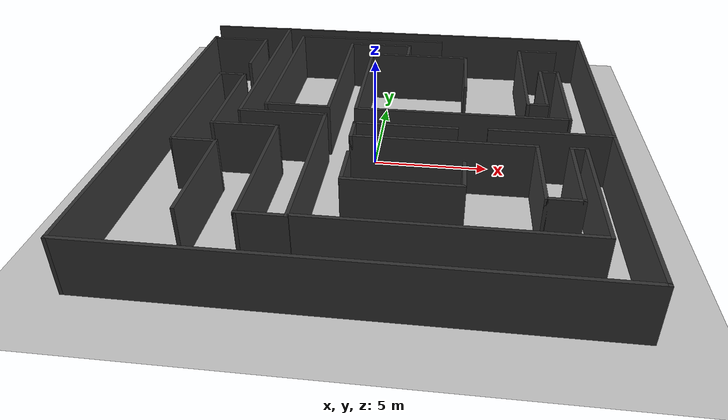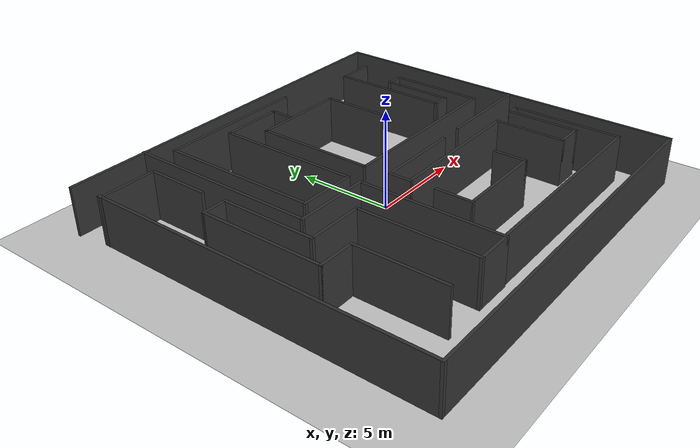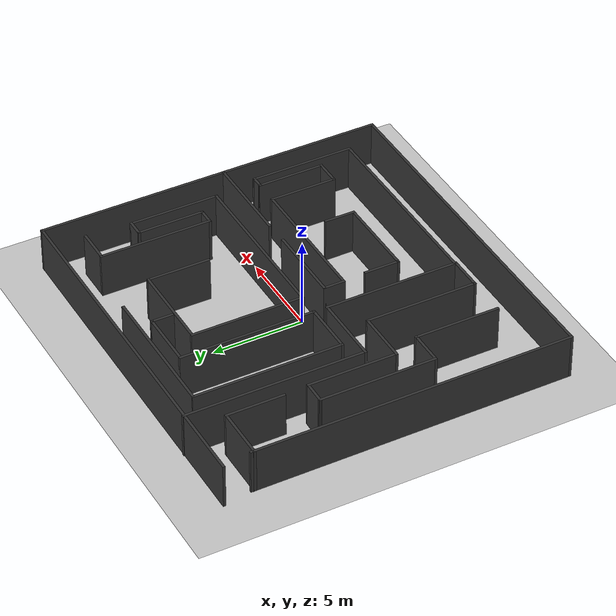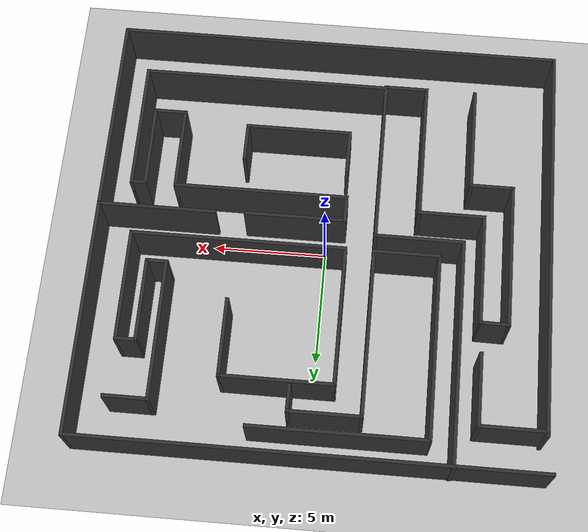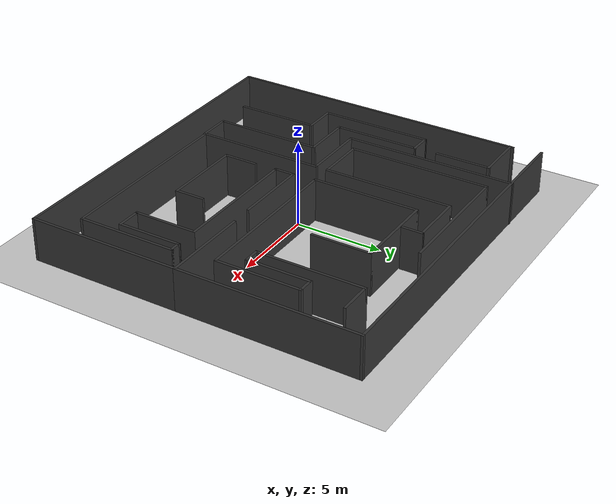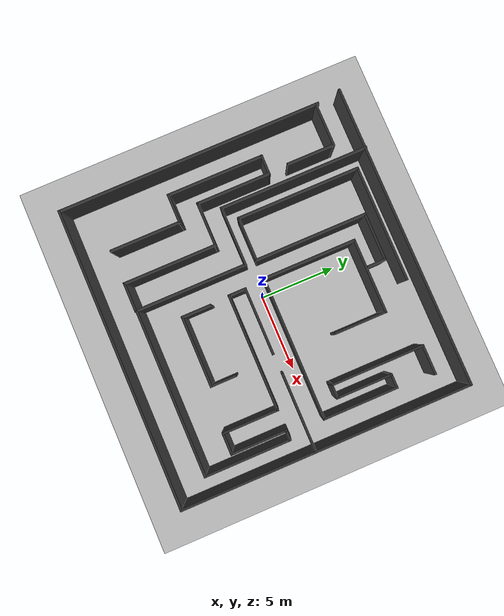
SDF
<?xml version="1.0" ?>
<sdf version="1.9">
    <world name="maze">
        <physics name="1ms" type="ignored">
            <max_step_size>0.001</max_step_size>
            <real_time_factor>1.0</real_time_factor>
        </physics>
        <plugin
            filename="ignition-gazebo-physics-system"
            name="ignition::gazebo::systems::Physics">
        </plugin>
        <plugin
            filename="ignition-gazebo-user-commands-system"
            name="ignition::gazebo::systems::UserCommands">
        </plugin>
        <plugin
            filename="ignition-gazebo-scene-broadcaster-system"
            name="ignition::gazebo::systems::SceneBroadcaster">
        </plugin>
        <plugin filename="ignition-gazebo-imu-system"
                name="ignition::gazebo::systems::Imu">
        </plugin>
        <plugin filename="ignition-gazebo-sensors-system"
                name="ignition::gazebo::systems::Sensors">
            <render_engine>ogre2</render_engine>
        </plugin>
        <plugin filename="ignition-gazebo-contact-system"
                name="ignition::gazebo::systems::Contact">
        </plugin>
        <gui fullscreen="0">
          <!-- 3D scene -->
          <plugin filename="MinimalScene" name="3D View">
          <ignition-gui>
            <title>3D View</title>
            <property type="bool" key="showTitleBar">false</property>
            <property type="string" key="state">docked</property>
          </ignition-gui>

          <engine>ogre2</engine>
          <scene>scene</scene>
          <ambient_light>0.4 0.4 0.4</ambient_light>
          <background_color>0.8 0.8 0.8</background_color>
          <camera_pose>-6 0 6 0 0.5 0</camera_pose>
          <camera_clip>
            <near>0.25</near>
            <far>25000</far>
          </camera_clip>
          </plugin>

          <!-- Plugins that add functionality to the scene -->
          <plugin filename="EntityContextMenuPlugin" name="Entity context menu">
          <ignition-gui>
            <property key="state" type="string">floating</property>
            <property key="width" type="double">5</property>
            <property key="height" type="double">5</property>
            <property key="showTitleBar" type="bool">false</property>
          </ignition-gui>
          </plugin>
          <plugin filename="GzSceneManager" name="Scene Manager">
          <ignition-gui>
            <property key="resizable" type="bool">false</property>
            <property key="width" type="double">5</property>
            <property key="height" type="double">5</property>
            <property key="state" type="string">floating</property>
            <property key="showTitleBar" type="bool">false</property>
          </ignition-gui>
          </plugin>
          <plugin filename="InteractiveViewControl" name="Interactive view control">
          <ignition-gui>
            <property key="resizable" type="bool">false</property>
            <property key="width" type="double">5</property>
            <property key="height" type="double">5</property>
            <property key="state" type="string">floating</property>
            <property key="showTitleBar" type="bool">false</property>
          </ignition-gui>
          </plugin>
          <plugin filename="CameraTracking" name="Camera Tracking">
          <ignition-gui>
            <property key="resizable" type="bool">false</property>
            <property key="width" type="double">5</property>
            <property key="height" type="double">5</property>
            <property key="state" type="string">floating</property>
            <property key="showTitleBar" type="bool">false</property>
          </ignition-gui>
          </plugin>
          <plugin filename="MarkerManager" name="Marker manager">
          <ignition-gui>
            <property key="resizable" type="bool">false</property>
            <property key="width" type="double">5</property>
            <property key="height" type="double">5</property>
            <property key="state" type="string">floating</property>
            <property key="showTitleBar" type="bool">false</property>
          </ignition-gui>
          </plugin>
          <plugin filename="SelectEntities" name="Select Entities">
          <ignition-gui>
            <anchors target="Select entities">
              <line own="right" target="right"/>
              <line own="top" target="top"/>
            </anchors>
            <property key="resizable" type="bool">false</property>
            <property key="width" type="double">5</property>
            <property key="height" type="double">5</property>
            <property key="state" type="string">floating</property>
            <property key="showTitleBar" type="bool">false</property>
          </ignition-gui>
          </plugin>
          <plugin filename="VisualizationCapabilities" name="Visualization Capabilities">
          <ignition-gui>
            <property key="resizable" type="bool">false</property>
            <property key="width" type="double">5</property>
            <property key="height" type="double">5</property>
            <property key="state" type="string">floating</property>
            <property key="showTitleBar" type="bool">false</property>
          </ignition-gui>
          </plugin>

          <plugin filename="Spawn" name="Spawn Entities">
          <ignition-gui>
            <anchors target="Select entities">
              <line own="right" target="right"/>
              <line own="top" target="top"/>
            </anchors>
            <property key="resizable" type="bool">false</property>
            <property key="width" type="double">5</property>
            <property key="height" type="double">5</property>
            <property key="state" type="string">floating</property>
            <property key="showTitleBar" type="bool">false</property>
          </ignition-gui>
          </plugin>

          <!-- World control -->
          <plugin filename="WorldControl" name="World control">
          <ignition-gui>
            <title>World control</title>
            <property type="bool" key="showTitleBar">false</property>
            <property type="bool" key="resizable">false</property>
            <property type="double" key="height">72</property>
            <property type="double" key="width">121</property>
            <property type="double" key="z">1</property>

            <property type="string" key="state">floating</property>
            <anchors target="3D View">
              <line own="left" target="left"/>
              <line own="bottom" target="bottom"/>
            </anchors>
          </ignition-gui>

          <play_pause>true</play_pause>
          <step>true</step>
          <start_paused>true</start_paused>
          <use_event>true</use_event>

          </plugin>

          <!-- World statistics -->
          <plugin filename="WorldStats" name="World stats">
          <ignition-gui>
            <title>World stats</title>
            <property type="bool" key="showTitleBar">false</property>
            <property type="bool" key="resizable">false</property>
            <property type="double" key="height">110</property>
            <property type="double" key="width">290</property>
            <property type="double" key="z">1</property>

            <property type="string" key="state">floating</property>
            <anchors target="3D View">
              <line own="right" target="right"/>
              <line own="bottom" target="bottom"/>
            </anchors>
          </ignition-gui>

          <sim_time>true</sim_time>
          <real_time>true</real_time>
          <real_time_factor>true</real_time_factor>
          <iterations>true</iterations>
          </plugin>Untitled

          <plugin
            filename="VisualizeLidar"
            name="Visualize Lidar">
          </plugin>

          <!-- Insert simple shapes -->
          <plugin filename="Shapes" name="Shapes">
          <ignition-gui>
            <property key="resizable" type="bool">false</property>
            <property key="x" type="double">0</property>
            <property key="y" type="double">0</property>
            <property key="width" type="double">250</property>
            <property key="height" type="double">50</property>
            <property key="state" type="string">floating</property>
            <property key="showTitleBar" type="bool">false</property>
            <property key="cardBackground" type="string">#666666</property>
          </ignition-gui>
          </plugin>

          <!-- Insert lights -->
          <plugin filename="Lights" name="Lights">
          <ignition-gui>
            <property key="resizable" type="bool">false</property>
            <property key="x" type="double">250</property>
            <property key="y" type="double">0</property>
            <property key="width" type="double">150</property>
            <property key="height" type="double">50</property>
            <property key="state" type="string">floating</property>
            <property key="showTitleBar" type="bool">false</property>
            <property key="cardBackground" type="string">#666666</property>
          </ignition-gui>
          </plugin>

          <!-- Translate / rotate -->
          <plugin filename="TransformControl" name="Transform control">
          <ignition-gui>
            <property key="resizable" type="bool">false</property>
            <property key="x" type="double">0</property>
            <property key="y" type="double">50</property>
            <property key="width" type="double">250</property>
            <property key="height" type="double">50</property>
            <property key="state" type="string">floating</property>
            <property key="showTitleBar" type="bool">false</property>
            <property key="cardBackground" type="string">#777777</property>
          </ignition-gui>
          </plugin>

          <!-- Screenshot -->
          <plugin filename="Screenshot" name="Screenshot">
          <ignition-gui>
            <property key="resizable" type="bool">false</property>
            <property key="x" type="double">250</property>
            <property key="y" type="double">50</property>
            <property key="width" type="double">50</property>
            <property key="height" type="double">50</property>
            <property key="state" type="string">floating</property>
            <property key="showTitleBar" type="bool">false</property>
            <property key="cardBackground" type="string">#777777</property>
          </ignition-gui>
          </plugin>

          <!-- Video recorder -->
          <plugin filename="VideoRecorder" name="VideoRecorder">
          <ignition-gui>
            <property key="resizable" type="bool">false</property>
            <property key="x" type="double">300</property>
            <property key="y" type="double">50</property>
            <property key="width" type="double">50</property>
            <property key="height" type="double">50</property>
            <property key="state" type="string">floating</property>
            <property key="showTitleBar" type="bool">false</property>
            <property key="cardBackground" type="string">#777777</property>
          </ignition-gui>

          <record_video>
            <use_sim_time>true</use_sim_time>
            <lockstep>false</lockstep>
            <bitrate>4000000</bitrate>
          </record_video>
          </plugin>

          <!-- Inspector -->
          <plugin filename="ComponentInspector" name="Component inspector">
          <ignition-gui>
            <property type="string" key="state">docked_collapsed</property>
          </ignition-gui>
          </plugin>

          <!-- Entity tree -->
          <plugin filename="EntityTree" name="Entity tree">
          <ignition-gui>
            <property type="string" key="state">docked_collapsed</property>
          </ignition-gui>
          </plugin>

          <!-- View angle -->
          <plugin filename="ViewAngle" name="View angle">
          <ignition-gui>
            <property type="string" key="state">docked_collapsed</property>
          </ignition-gui>
          </plugin>

            <!-- KeyPublisher plugin-->

        </gui>

        <light type="directional" name="sun">
            <cast_shadows>true</cast_shadows>
            <pose>0 0 10 0 0 0</pose>
            <diffuse>0.8 0.8 0.8 1</diffuse>
            <specular>0.2 0.2 0.2 1</specular>
            <attenuation>
                <range>1000</range>
                <constant>0.9</constant>
                <linear>0.01</linear>
                <quadratic>0.001</quadratic>
            </attenuation>
            <direction>-0.5 0.1 -0.9</direction>
        </light>

        <model name="ground_plane">
            <static>true</static>
            <link name="link">
                <collision name="collision">
                <geometry>
                    <plane>
                    <normal>0 0 1</normal>
                    </plane>
                </geometry>
                </collision>
                <visual name="visual">
                <geometry>
                    <plane>
                    <normal>0 0 1</normal>
                    <size>100 100</size>
                    </plane>
                </geometry>
                <material>
                    <ambient>0.8 0.8 0.8 1</ambient>
                    <diffuse>0.8 0.8 0.8 1</diffuse>
                    <specular>0.8 0.8 0.8 1</specular>
                </material>
                </visual>
            </link>
        </model>
    <include>
      <uri>model://maze</uri>
      <name>Maze</name>
    </include>

    </world>
</sdf>

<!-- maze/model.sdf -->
<sdf version='1.7'>
  <model name='maze'>
    <pose>-0.015957 0.005127 0 0 -0 0</pose>
    <link name='Wall_0'>
      <collision name='Wall_0_Collision'>
        <geometry>
          <box>
            <size>4.5 0.15 2.5</size>
          </box>
        </geometry>
        <pose>0 0 1.25 0 -0 0</pose>
      </collision>
      <visual name='Wall_0_Visual'>
        <pose>0 0 1.25 0 -0 0</pose>
        <geometry>
          <box>
            <size>4.5 0.15 2.5</size>
          </box>
        </geometry>
        <material>
          <ambient>0.2 0.2 0.2 1</ambient>
          <diffuse>0.2 0.2 0.2 1</diffuse>
          <specular>0.1 0.1 0.1 1</specular>
        </material>
        <meta>
          <layer>0</layer>
        </meta>
      </visual>
      <pose>1.39096 -0.825127 0 0 -0 0</pose>
    </link>
    <link name='Wall_14'>
      <collision name='Wall_14_Collision'>
        <geometry>
          <box>
            <size>5 0.15 2.5</size>
          </box>
        </geometry>
        <pose>0 0 1.25 0 -0 0</pose>
      </collision>
      <visual name='Wall_14_Visual'>
        <pose>0 0 1.25 0 -0 0</pose>
        <geometry>
          <box>
            <size>5 0.15 2.5</size>
          </box>
        </geometry>
        <material>
          <ambient>0.2 0.2 0.2 1</ambient>
          <diffuse>0.2 0.2 0.2 1</diffuse>
          <specular>0.1 0.1 0.1 1</specular>
        </material>
        <meta>
          <layer>0</layer>
        </meta>
      </visual>
      <pose>8.43394 2.90863 0 0 -0 1.5708</pose>
    </link>
    <link name='Wall_17'>
      <collision name='Wall_17_Collision'>
        <geometry>
          <box>
            <size>1.25 0.15 2.5</size>
          </box>
        </geometry>
        <pose>0 0 1.25 0 -0 0</pose>
      </collision>
      <visual name='Wall_17_Visual'>
        <pose>0 0 1.25 0 -0 0</pose>
        <geometry>
          <box>
            <size>1.25 0.15 2.5</size>
          </box>
        </geometry>
        <material>
          <ambient>0.2 0.2 0.2 1</ambient>
          <diffuse>0.2 0.2 0.2 1</diffuse>
          <specular>0.1 0.1 0.1 1</specular>
        </material>
        <meta>
          <layer>0</layer>
        </meta>
      </visual>
      <pose>-0.784043 -1.37513 0 0 -0 -1.5708</pose>
    </link>
    <link name='Wall_18'>
      <collision name='Wall_18_Collision'>
        <geometry>
          <box>
            <size>7.75 0.15 2.5</size>
          </box>
        </geometry>
        <pose>0 0 1.25 0 -0 0</pose>
      </collision>
      <visual name='Wall_18_Visual'>
        <pose>0 0 1.25 0 -0 0</pose>
        <geometry>
          <box>
            <size>7.75 0.15 2.5</size>
          </box>
        </geometry>
        <material>
          <ambient>0.2 0.2 0.2 1</ambient>
          <diffuse>0.2 0.2 0.2 1</diffuse>
          <specular>0.1 0.1 0.1 1</specular>
        </material>
        <meta>
          <layer>0</layer>
        </meta>
      </visual>
      <pose>3.01596 -1.92513 0 0 -0 0</pose>
    </link>
    <link name='Wall_19'>
      <collision name='Wall_19_Collision'>
        <geometry>
          <box>
            <size>3.75 0.15 2.5</size>
          </box>
        </geometry>
        <pose>0 0 1.25 0 -0 0</pose>
      </collision>
      <visual name='Wall_19_Visual'>
        <pose>0 0 1.25 0 -0 0</pose>
        <geometry>
          <box>
            <size>3.75 0.15 2.5</size>
          </box>
        </geometry>
        <material>
          <ambient>0.2 0.2 0.2 1</ambient>
          <diffuse>0.2 0.2 0.2 1</diffuse>
          <specular>0.1 0.1 0.1 1</specular>
        </material>
        <meta>
          <layer>0</layer>
        </meta>
      </visual>
      <pose>6.81596 -3.72513 0 0 -0 -1.5708</pose>
    </link>
    <link name='Wall_20'>
      <collision name='Wall_20_Collision'>
        <geometry>
          <box>
            <size>1.5 0.15 2.5</size>
          </box>
        </geometry>
        <pose>0 0 1.25 0 -0 0</pose>
      </collision>
      <visual name='Wall_20_Visual'>
        <pose>0 0 1.25 0 -0 0</pose>
        <geometry>
          <box>
            <size>1.5 0.15 2.5</size>
          </box>
        </geometry>
        <material>
          <ambient>0.2 0.2 0.2 1</ambient>
          <diffuse>0.2 0.2 0.2 1</diffuse>
          <specular>0.1 0.1 0.1 1</specular>
        </material>
        <meta>
          <layer>0</layer>
        </meta>
      </visual>
      <pose>7.49096 -5.52513 0 0 -0 0</pose>
    </link>
    <link name='Wall_21'>
      <collision name='Wall_21_Collision'>
        <geometry>
          <box>
            <size>3.75 0.15 2.5</size>
          </box>
        </geometry>
        <pose>0 0 1.25 0 -0 0</pose>
      </collision>
      <visual name='Wall_21_Visual'>
        <pose>0 0 1.25 0 -0 0</pose>
        <geometry>
          <box>
            <size>3.75 0.15 2.5</size>
          </box>
        </geometry>
        <material>
          <ambient>0.2 0.2 0.2 1</ambient>
          <diffuse>0.2 0.2 0.2 1</diffuse>
          <specular>0.1 0.1 0.1 1</specular>
        </material>
        <meta>
          <layer>0</layer>
        </meta>
      </visual>
      <pose>8.16596 -3.72513 0 0 -0 1.5708</pose>
    </link>
    <link name='Wall_22'>
      <collision name='Wall_22_Collision'>
        <geometry>
          <box>
            <size>0.75 0.15 2.5</size>
          </box>
        </geometry>
        <pose>0 0 1.25 0 -0 0</pose>
      </collision>
      <visual name='Wall_22_Visual'>
        <pose>0 0 1.25 0 -0 0</pose>
        <geometry>
          <box>
            <size>0.75 0.15 2.5</size>
          </box>
        </geometry>
        <material>
          <ambient>0.2 0.2 0.2 1</ambient>
          <diffuse>0.2 0.2 0.2 1</diffuse>
          <specular>0.1 0.1 0.1 1</specular>
        </material>
        <meta>
          <layer>0</layer>
        </meta>
      </visual>
      <pose>8.46596 -1.92513 0 0 -0 0</pose>
    </link>
    <link name='Wall_23'>
      <collision name='Wall_23_Collision'>
        <geometry>
          <box>
            <size>5.75 0.15 2.5</size>
          </box>
        </geometry>
        <pose>0 0 1.25 0 -0 0</pose>
      </collision>
      <visual name='Wall_23_Visual'>
        <pose>0 0 1.25 0 -0 0</pose>
        <geometry>
          <box>
            <size>5.75 0.15 2.5</size>
          </box>
        </geometry>
        <material>
          <ambient>0.2 0.2 0.2 1</ambient>
          <diffuse>0.2 0.2 0.2 1</diffuse>
          <specular>0.1 0.1 0.1 1</specular>
        </material>
        <meta>
          <layer>0</layer>
        </meta>
      </visual>
      <pose>8.76596 -4.72513 0 0 -0 -1.5708</pose>
    </link>
    <link name='Wall_25'>
      <collision name='Wall_25_Collision'>
        <geometry>
          <box>
            <size>9 0.15 2.5</size>
          </box>
        </geometry>
        <pose>0 0 1.25 0 -0 0</pose>
      </collision>
      <visual name='Wall_25_Visual'>
        <pose>0 0 1.25 0 -0 0</pose>
        <geometry>
          <box>
            <size>9 0.15 2.5</size>
          </box>
        </geometry>
        <material>
          <ambient>0.2 0.2 0.2 1</ambient>
          <diffuse>0.2 0.2 0.2 1</diffuse>
          <specular>0.1 0.1 0.1 1</specular>
        </material>
        <meta>
          <layer>0</layer>
        </meta>
      </visual>
      <pose>10.05 -5.1955 0 0 -0 -1.5708</pose>
    </link>
    <link name='Wall_27'>
      <collision name='Wall_27_Collision'>
        <geometry>
          <box>
            <size>20 0.15 2.5</size>
          </box>
        </geometry>
        <pose>0 0 1.25 0 -0 0</pose>
      </collision>
      <visual name='Wall_27_Visual'>
        <pose>0 0 1.25 0 -0 0</pose>
        <geometry>
          <box>
            <size>20 0.15 2.5</size>
          </box>
        </geometry>
        <material>
          <ambient>0.2 0.2 0.2 1</ambient>
          <diffuse>0.2 0.2 0.2 1</diffuse>
          <specular>0.1 0.1 0.1 1</specular>
        </material>
        <meta>
          <layer>0</layer>
        </meta>
      </visual>
      <pose>0.125 -9.62049 0 0 -0 3.14159</pose>
    </link>
    <link name='Wall_29'>
      <collision name='Wall_29_Collision'>
        <geometry>
          <box>
            <size>20.25 0.15 2.5</size>
          </box>
        </geometry>
        <pose>0 0 1.25 0 -0 0</pose>
      </collision>
      <visual name='Wall_29_Visual'>
        <pose>0 0 1.25 0 -0 0</pose>
        <geometry>
          <box>
            <size>20.25 0.15 2.5</size>
          </box>
        </geometry>
        <material>
          <ambient>0.2 0.2 0.2 1</ambient>
          <diffuse>0.2 0.2 0.2 1</diffuse>
          <specular>0.1 0.1 0.1 1</specular>
        </material>
        <meta>
          <layer>0</layer>
        </meta>
      </visual>
      <pose>-0 9.5795 0 0 -0 3.14159</pose>
    </link>
    <link name='Wall_3'>
      <collision name='Wall_3_Collision'>
        <geometry>
          <box>
            <size>5.25 0.15 2.5</size>
          </box>
        </geometry>
        <pose>0 0 1.25 0 -0 0</pose>
      </collision>
      <visual name='Wall_3_Visual'>
        <pose>0 0 1.25 0 -0 0</pose>
        <geometry>
          <box>
            <size>5.25 0.15 2.5</size>
          </box>
        </geometry>
        <material>
          <ambient>0.2 0.2 0.2 1</ambient>
          <diffuse>0.2 0.2 0.2 1</diffuse>
          <specular>0.1 0.1 0.1 1</specular>
        </material>
        <meta>
          <layer>0</layer>
        </meta>
      </visual>
      <pose>7.5 -0.770495 0 0 -0 0</pose>
    </link>
    <link name='Wall_31'>
      <collision name='Wall_31_Collision'>
        <geometry>
          <box>
            <size>17.75 0.15 2.5</size>
          </box>
        </geometry>
        <pose>0 0 1.25 0 -0 0</pose>
      </collision>
      <visual name='Wall_31_Visual'>
        <pose>0 0 1.25 0 -0 0</pose>
        <geometry>
          <box>
            <size>17.75 0.15 2.5</size>
          </box>
        </geometry>
        <material>
          <ambient>0.2 0.2 0.2 1</ambient>
          <diffuse>0.2 0.2 0.2 1</diffuse>
          <specular>0.1 0.1 0.1 1</specular>
        </material>
        <meta>
          <layer>0</layer>
        </meta>
      </visual>
      <pose>-9.8 -0.820495 0 0 -0 1.5708</pose>
    </link>
    <link name='Wall_33'>
      <collision name='Wall_33_Collision'>
        <geometry>
          <box>
            <size>6.25 0.15 2.5</size>
          </box>
        </geometry>
        <pose>0 0 1.25 0 -0 0</pose>
      </collision>
      <visual name='Wall_33_Visual'>
        <pose>0 0 1.25 0 -0 0</pose>
        <geometry>
          <box>
            <size>6.25 0.15 2.5</size>
          </box>
        </geometry>
        <material>
          <ambient>0.2 0.2 0.2 1</ambient>
          <diffuse>0.2 0.2 0.2 1</diffuse>
          <specular>0.1 0.1 0.1 1</specular>
        </material>
        <meta>
          <layer>0</layer>
        </meta>
      </visual>
      <pose>-0.916059 3.53363 0 0 -0 1.5708</pose>
    </link>
    <link name='Wall_34'>
      <collision name='Wall_34_Collision'>
        <geometry>
          <box>
            <size>5 0.15 2.5</size>
          </box>
        </geometry>
        <pose>0 0 1.25 0 -0 0</pose>
      </collision>
      <visual name='Wall_34_Visual'>
        <pose>0 0 1.25 0 -0 0</pose>
        <geometry>
          <box>
            <size>5 0.15 2.5</size>
          </box>
        </geometry>
        <material>
          <ambient>0.2 0.2 0.2 1</ambient>
          <diffuse>0.2 0.2 0.2 1</diffuse>
          <specular>0.1 0.1 0.1 1</specular>
        </material>
        <meta>
          <layer>0</layer>
        </meta>
      </visual>
      <pose>1.50894 6.58363 0 0 -0 0</pose>
    </link>
    <link name='Wall_35'>
      <collision name='Wall_35_Collision'>
        <geometry>
          <box>
            <size>3.5 0.15 2.5</size>
          </box>
        </geometry>
        <pose>0 0 1.25 0 -0 0</pose>
      </collision>
      <visual name='Wall_35_Visual'>
        <pose>0 0 1.25 0 -0 0</pose>
        <geometry>
          <box>
            <size>3.5 0.15 2.5</size>
          </box>
        </geometry>
        <material>
          <ambient>0.2 0.2 0.2 1</ambient>
          <diffuse>0.2 0.2 0.2 1</diffuse>
          <specular>0.1 0.1 0.1 1</specular>
        </material>
        <meta>
          <layer>0</layer>
        </meta>
      </visual>
      <pose>3.93394 4.90863 0 0 -0 -1.5708</pose>
    </link>
    <link name='Wall_37'>
      <collision name='Wall_37_Collision'>
        <geometry>
          <box>
            <size>7.5 0.15 2.5</size>
          </box>
        </geometry>
        <pose>0 0 1.25 0 -0 0</pose>
      </collision>
      <visual name='Wall_37_Visual'>
        <pose>0 0 1.25 0 -0 0</pose>
        <geometry>
          <box>
            <size>7.5 0.15 2.5</size>
          </box>
        </geometry>
        <material>
          <ambient>0.2 0.2 0.2 1</ambient>
          <diffuse>0.2 0.2 0.2 1</diffuse>
          <specular>0.1 0.1 0.1 1</specular>
        </material>
        <meta>
          <layer>0</layer>
        </meta>
      </visual>
      <pose>-2.16083 4.17877 0 0 -0 1.5708</pose>
    </link>
    <link name='Wall_38'>
      <collision name='Wall_38_Collision'>
        <geometry>
          <box>
            <size>3.25 0.15 2.5</size>
          </box>
        </geometry>
        <pose>0 0 1.25 0 -0 0</pose>
      </collision>
      <visual name='Wall_38_Visual'>
        <pose>0 0 1.25 0 -0 0</pose>
        <geometry>
          <box>
            <size>3.25 0.15 2.5</size>
          </box>
        </geometry>
        <material>
          <ambient>0.2 0.2 0.2 1</ambient>
          <diffuse>0.2 0.2 0.2 1</diffuse>
          <specular>0.1 0.1 0.1 1</specular>
        </material>
        <meta>
          <layer>0</layer>
        </meta>
      </visual>
      <pose>-0.610827 7.85377 0 0 -0 0</pose>
    </link>
    <link name='Wall_39'>
      <collision name='Wall_39_Collision'>
        <geometry>
          <box>
            <size>1.25 0.15 2.5</size>
          </box>
        </geometry>
        <pose>0 0 1.25 0 -0 0</pose>
      </collision>
      <visual name='Wall_39_Visual'>
        <pose>0 0 1.25 0 -0 0</pose>
        <geometry>
          <box>
            <size>1.25 0.15 2.5</size>
          </box>
        </geometry>
        <material>
          <ambient>0.2 0.2 0.2 1</ambient>
          <diffuse>0.2 0.2 0.2 1</diffuse>
          <specular>0.1 0.1 0.1 1</specular>
        </material>
        <meta>
          <layer>0</layer>
        </meta>
      </visual>
      <pose>0.939173 7.30377 0 0 -0 -1.5708</pose>
    </link>
    <link name='Wall_4'>
      <collision name='Wall_4_Collision'>
        <geometry>
          <box>
            <size>10.5 0.15 2.5</size>
          </box>
        </geometry>
        <pose>0 0 1.25 0 -0 0</pose>
      </collision>
      <visual name='Wall_4_Visual'>
        <pose>0 0 1.25 0 -0 0</pose>
        <geometry>
          <box>
            <size>10.5 0.15 2.5</size>
          </box>
        </geometry>
        <material>
          <ambient>0.2 0.2 0.2 1</ambient>
          <diffuse>0.2 0.2 0.2 1</diffuse>
          <specular>0.1 0.1 0.1 1</specular>
        </material>
        <meta>
          <layer>0</layer>
        </meta>
      </visual>
      <pose>10.05 4.40451 0 0 -0 1.5708</pose>
    </link>
    <link name='Wall_41'>
      <collision name='Wall_41_Collision'>
        <geometry>
          <box>
            <size>3 0.15 2.5</size>
          </box>
        </geometry>
        <pose>0 0 1.25 0 -0 0</pose>
      </collision>
      <visual name='Wall_41_Visual'>
        <pose>0 0 1.25 0 -0 0</pose>
        <geometry>
          <box>
            <size>3 0.15 2.5</size>
          </box>
        </geometry>
        <material>
          <ambient>0.2 0.2 0.2 1</ambient>
          <diffuse>0.2 0.2 0.2 1</diffuse>
          <specular>0.1 0.1 0.1 1</specular>
        </material>
        <meta>
          <layer>0</layer>
        </meta>
      </visual>
      <pose>-3.58583 0.50377 0 0 -0 3.14159</pose>
    </link>
    <link name='Wall_42'>
      <collision name='Wall_42_Collision'>
        <geometry>
          <box>
            <size>8.25 0.15 2.5</size>
          </box>
        </geometry>
        <pose>0 0 1.25 0 -0 0</pose>
      </collision>
      <visual name='Wall_42_Visual'>
        <pose>0 0 1.25 0 -0 0</pose>
        <geometry>
          <box>
            <size>8.25 0.15 2.5</size>
          </box>
        </geometry>
        <material>
          <ambient>0.2 0.2 0.2 1</ambient>
          <diffuse>0.2 0.2 0.2 1</diffuse>
          <specular>0.1 0.1 0.1 1</specular>
        </material>
        <meta>
          <layer>0</layer>
        </meta>
      </visual>
      <pose>-5.01083 4.55377 0 0 -0 1.5708</pose>
    </link>
    <link name='Wall_43'>
      <collision name='Wall_43_Collision'>
        <geometry>
          <box>
            <size>7.75 0.15 2.5</size>
          </box>
        </geometry>
        <pose>0 0 1.25 0 -0 0</pose>
      </collision>
      <visual name='Wall_43_Visual'>
        <pose>0 0 1.25 0 -0 0</pose>
        <geometry>
          <box>
            <size>7.75 0.15 2.5</size>
          </box>
        </geometry>
        <material>
          <ambient>0.2 0.2 0.2 1</ambient>
          <diffuse>0.2 0.2 0.2 1</diffuse>
          <specular>0.1 0.1 0.1 1</specular>
        </material>
        <meta>
          <layer>0</layer>
        </meta>
      </visual>
      <pose>-1.21083 8.60377 0 0 -0 0</pose>
    </link>
    <link name='Wall_45'>
      <collision name='Wall_45_Collision'>
        <geometry>
          <box>
            <size>4 0.15 2.5</size>
          </box>
        </geometry>
        <pose>0 0 1.25 0 -0 0</pose>
      </collision>
      <visual name='Wall_45_Visual'>
        <pose>0 0 1.25 0 -0 0</pose>
        <geometry>
          <box>
            <size>4 0.15 2.5</size>
          </box>
        </geometry>
        <material>
          <ambient>0.2 0.2 0.2 1</ambient>
          <diffuse>0.2 0.2 0.2 1</diffuse>
          <specular>0.1 0.1 0.1 1</specular>
        </material>
        <meta>
          <layer>0</layer>
        </meta>
      </visual>
      <pose>-4.09594 -0.229504 0 0 -0 3.14159</pose>
    </link>
    <link name='Wall_46'>
      <collision name='Wall_46_Collision'>
        <geometry>
          <box>
            <size>10 0.15 2.5</size>
          </box>
        </geometry>
        <pose>0 0 1.25 0 -0 0</pose>
      </collision>
      <visual name='Wall_46_Visual'>
        <pose>0 0 1.25 0 -0 0</pose>
        <geometry>
          <box>
            <size>10 0.15 2.5</size>
          </box>
        </geometry>
        <material>
          <ambient>0.2 0.2 0.2 1</ambient>
          <diffuse>0.2 0.2 0.2 1</diffuse>
          <specular>0.1 0.1 0.1 1</specular>
        </material>
        <meta>
          <layer>0</layer>
        </meta>
      </visual>
      <pose>-6.02094 4.6955 0 0 -0 1.5708</pose>
    </link>
    <link name='Wall_49'>
      <collision name='Wall_49_Collision'>
        <geometry>
          <box>
            <size>1 0.15 2.5</size>
          </box>
        </geometry>
        <pose>0 0 1.25 0 -0 0</pose>
      </collision>
      <visual name='Wall_49_Visual'>
        <pose>0 0 1.25 0 -0 0</pose>
        <geometry>
          <box>
            <size>1 0.15 2.5</size>
          </box>
        </geometry>
        <material>
          <ambient>0.2 0.2 0.2 1</ambient>
          <diffuse>0.2 0.2 0.2 1</diffuse>
          <specular>0.1 0.1 0.1 1</specular>
        </material>
        <meta>
          <layer>0</layer>
        </meta>
      </visual>
      <pose>8.00894 5.33363 0 0 -0 3.14159</pose>
    </link>
    <link name='Wall_50'>
      <collision name='Wall_50_Collision'>
        <geometry>
          <box>
            <size>3.75 0.15 2.5</size>
          </box>
        </geometry>
        <pose>0 0 1.25 0 -0 0</pose>
      </collision>
      <visual name='Wall_50_Visual'>
        <pose>0 0 1.25 0 -0 0</pose>
        <geometry>
          <box>
            <size>3.75 0.15 2.5</size>
          </box>
        </geometry>
        <material>
          <ambient>0.2 0.2 0.2 1</ambient>
          <diffuse>0.2 0.2 0.2 1</diffuse>
          <specular>0.1 0.1 0.1 1</specular>
        </material>
        <meta>
          <layer>0</layer>
        </meta>
      </visual>
      <pose>7.58394 3.53363 0 0 -0 -1.5708</pose>
    </link>
    <link name='Wall_51'>
      <collision name='Wall_51_Collision'>
        <geometry>
          <box>
            <size>1 0.15 2.5</size>
          </box>
        </geometry>
        <pose>0 0 1.25 0 -0 0</pose>
      </collision>
      <visual name='Wall_51_Visual'>
        <pose>0 0 1.25 0 -0 0</pose>
        <geometry>
          <box>
            <size>1 0.15 2.5</size>
          </box>
        </geometry>
        <material>
          <ambient>0.2 0.2 0.2 1</ambient>
          <diffuse>0.2 0.2 0.2 1</diffuse>
          <specular>0.1 0.1 0.1 1</specular>
        </material>
        <meta>
          <layer>0</layer>
        </meta>
      </visual>
      <pose>7.15894 1.73363 0 0 -0 3.14159</pose>
    </link>
    <link name='Wall_52'>
      <collision name='Wall_52_Collision'>
        <geometry>
          <box>
            <size>6.25 0.15 2.5</size>
          </box>
        </geometry>
        <pose>0 0 1.25 0 -0 0</pose>
      </collision>
      <visual name='Wall_52_Visual'>
        <pose>0 0 1.25 0 -0 0</pose>
        <geometry>
          <box>
            <size>6.25 0.15 2.5</size>
          </box>
        </geometry>
        <material>
          <ambient>0.2 0.2 0.2 1</ambient>
          <diffuse>0.2 0.2 0.2 1</diffuse>
          <specular>0.1 0.1 0.1 1</specular>
        </material>
        <meta>
          <layer>0</layer>
        </meta>
      </visual>
      <pose>6.73394 4.78363 0 0 -0 1.5708</pose>
    </link>
    <link name='Wall_53'>
      <collision name='Wall_53_Collision'>
        <geometry>
          <box>
            <size>2 0.15 2.5</size>
          </box>
        </geometry>
        <pose>0 0 1.25 0 -0 0</pose>
      </collision>
      <visual name='Wall_53_Visual'>
        <pose>0 0 1.25 0 -0 0</pose>
        <geometry>
          <box>
            <size>2 0.15 2.5</size>
          </box>
        </geometry>
        <material>
          <ambient>0.2 0.2 0.2 1</ambient>
          <diffuse>0.2 0.2 0.2 1</diffuse>
          <specular>0.1 0.1 0.1 1</specular>
        </material>
        <meta>
          <layer>0</layer>
        </meta>
      </visual>
      <pose>7.65894 7.83363 0 0 -0 0</pose>
    </link>
    <link name='Wall_55'>
      <collision name='Wall_55_Collision'>
        <geometry>
          <box>
            <size>11 0.15 2.5</size>
          </box>
        </geometry>
        <pose>0 0 1.25 0 -0 0</pose>
      </collision>
      <visual name='Wall_55_Visual'>
        <pose>0 0 1.25 0 -0 0</pose>
        <geometry>
          <box>
            <size>11 0.15 2.5</size>
          </box>
        </geometry>
        <material>
          <ambient>0.2 0.2 0.2 1</ambient>
          <diffuse>0.2 0.2 0.2 1</diffuse>
          <specular>0.1 0.1 0.1 1</specular>
        </material>
        <meta>
          <layer>0</layer>
        </meta>
      </visual>
      <pose>3.34096 -7.52513 0 0 -0 3.14159</pose>
    </link>
    <link name='Wall_57'>
      <collision name='Wall_57_Collision'>
        <geometry>
          <box>
            <size>7.5 0.15 2.5</size>
          </box>
        </geometry>
        <pose>0 0 1.25 0 -0 0</pose>
      </collision>
      <visual name='Wall_57_Visual'>
        <pose>0 0 1.25 0 -0 0</pose>
        <geometry>
          <box>
            <size>7.5 0.15 2.5</size>
          </box>
        </geometry>
        <material>
          <ambient>0.2 0.2 0.2 1</ambient>
          <diffuse>0.2 0.2 0.2 1</diffuse>
          <specular>0.1 0.1 0.1 1</specular>
        </material>
        <meta>
          <layer>0</layer>
        </meta>
      </visual>
      <pose>-2.17094 -3.9045 0 0 -0 -1.5708</pose>
    </link>
    <link name='Wall_59'>
      <collision name='Wall_59_Collision'>
        <geometry>
          <box>
            <size>2 0.15 2.5</size>
          </box>
        </geometry>
        <pose>0 0 1.25 0 -0 0</pose>
      </collision>
      <visual name='Wall_59_Visual'>
        <pose>0 0 1.25 0 -0 0</pose>
        <geometry>
          <box>
            <size>2 0.15 2.5</size>
          </box>
        </geometry>
        <material>
          <ambient>0.2 0.2 0.2 1</ambient>
          <diffuse>0.2 0.2 0.2 1</diffuse>
          <specular>0.1 0.1 0.1 1</specular>
        </material>
        <meta>
          <layer>0</layer>
        </meta>
      </visual>
      <pose>-3.09594 -7.5795 0 0 -0 3.14159</pose>
    </link>
    <link name='Wall_60'>
      <collision name='Wall_60_Collision'>
        <geometry>
          <box>
            <size>6.25 0.15 2.5</size>
          </box>
        </geometry>
        <pose>0 0 1.25 0 -0 0</pose>
      </collision>
      <visual name='Wall_60_Visual'>
        <pose>0 0 1.25 0 -0 0</pose>
        <geometry>
          <box>
            <size>6.25 0.15 2.5</size>
          </box>
        </geometry>
        <material>
          <ambient>0.2 0.2 0.2 1</ambient>
          <diffuse>0.2 0.2 0.2 1</diffuse>
          <specular>0.1 0.1 0.1 1</specular>
        </material>
        <meta>
          <layer>0</layer>
        </meta>
      </visual>
      <pose>-4.02094 -4.5295 0 0 -0 1.5708</pose>
    </link>
    <link name='Wall_61'>
      <collision name='Wall_61_Collision'>
        <geometry>
          <box>
            <size>3 0.15 2.5</size>
          </box>
        </geometry>
        <pose>0 0 1.25 0 -0 0</pose>
      </collision>
      <visual name='Wall_61_Visual'>
        <pose>0 0 1.25 0 -0 0</pose>
        <geometry>
          <box>
            <size>3 0.15 2.5</size>
          </box>
        </geometry>
        <material>
          <ambient>0.2 0.2 0.2 1</ambient>
          <diffuse>0.2 0.2 0.2 1</diffuse>
          <specular>0.1 0.1 0.1 1</specular>
        </material>
        <meta>
          <layer>0</layer>
        </meta>
      </visual>
      <pose>-5.44594 -1.4795 0 0 -0 3.14159</pose>
    </link>
    <link name='Wall_62'>
      <collision name='Wall_62_Collision'>
        <geometry>
          <box>
            <size>5 0.15 2.5</size>
          </box>
        </geometry>
        <pose>0 0 1.25 0 -0 0</pose>
      </collision>
      <visual name='Wall_62_Visual'>
        <pose>0 0 1.25 0 -0 0</pose>
        <geometry>
          <box>
            <size>5 0.15 2.5</size>
          </box>
        </geometry>
        <material>
          <ambient>0.2 0.2 0.2 1</ambient>
          <diffuse>0.2 0.2 0.2 1</diffuse>
          <specular>0.1 0.1 0.1 1</specular>
        </material>
        <meta>
          <layer>0</layer>
        </meta>
      </visual>
      <pose>-6.87094 0.945495 0 0 -0 1.5708</pose>
    </link>
    <link name='Wall_64'>
      <collision name='Wall_64_Collision'>
        <geometry>
          <box>
            <size>3.25 0.15 2.5</size>
          </box>
        </geometry>
        <pose>0 0 1.25 0 -0 0</pose>
      </collision>
      <visual name='Wall_64_Visual'>
        <pose>0 0 1.25 0 -0 0</pose>
        <geometry>
          <box>
            <size>3.25 0.15 2.5</size>
          </box>
        </geometry>
        <material>
          <ambient>0.2 0.2 0.2 1</ambient>
          <diffuse>0.2 0.2 0.2 1</diffuse>
          <specular>0.1 0.1 0.1 1</specular>
        </material>
        <meta>
          <layer>0</layer>
        </meta>
      </visual>
      <pose>-6.95921 6.27905 0 0 -0 1.5708</pose>
    </link>
    <link name='Wall_65'>
      <collision name='Wall_65_Collision'>
        <geometry>
          <box>
            <size>3 0.15 2.5</size>
          </box>
        </geometry>
        <pose>0 0 1.25 0 -0 0</pose>
      </collision>
      <visual name='Wall_65_Visual'>
        <pose>0 0 1.25 0 -0 0</pose>
        <geometry>
          <box>
            <size>3 0.15 2.5</size>
          </box>
        </geometry>
        <material>
          <ambient>0.2 0.2 0.2 1</ambient>
          <diffuse>0.2 0.2 0.2 1</diffuse>
          <specular>0.1 0.1 0.1 1</specular>
        </material>
        <meta>
          <layer>0</layer>
        </meta>
      </visual>
      <pose>-8.38421 7.82905 0 0 -0 3.14159</pose>
    </link>
    <link name='Wall_67'>
      <collision name='Wall_67_Collision'>
        <geometry>
          <box>
            <size>2 0.15 2.5</size>
          </box>
        </geometry>
        <pose>0 0 1.25 0 -0 0</pose>
      </collision>
      <visual name='Wall_67_Visual'>
        <pose>0 0 1.25 0 -0 0</pose>
        <geometry>
          <box>
            <size>2 0.15 2.5</size>
          </box>
        </geometry>
        <material>
          <ambient>0.2 0.2 0.2 1</ambient>
          <diffuse>0.2 0.2 0.2 1</diffuse>
          <specular>0.1 0.1 0.1 1</specular>
        </material>
        <meta>
          <layer>0</layer>
        </meta>
      </visual>
      <pose>-0.693596 -4.16382 0 0 -0 -1.5708</pose>
    </link>
    <link name='Wall_68'>
      <collision name='Wall_68_Collision'>
        <geometry>
          <box>
            <size>4.75 0.15 2.5</size>
          </box>
        </geometry>
        <pose>0 0 1.25 0 -0 0</pose>
      </collision>
      <visual name='Wall_68_Visual'>
        <pose>0 0 1.25 0 -0 0</pose>
        <geometry>
          <box>
            <size>4.75 0.15 2.5</size>
          </box>
        </geometry>
        <material>
          <ambient>0.2 0.2 0.2 1</ambient>
          <diffuse>0.2 0.2 0.2 1</diffuse>
          <specular>0.1 0.1 0.1 1</specular>
        </material>
        <meta>
          <layer>0</layer>
        </meta>
      </visual>
      <pose>1.6064 -5.08882 0 0 -0 0</pose>
    </link>
    <link name='Wall_69'>
      <collision name='Wall_69_Collision'>
        <geometry>
          <box>
            <size>1.75 0.15 2.5</size>
          </box>
        </geometry>
        <pose>0 0 1.25 0 -0 0</pose>
      </collision>
      <visual name='Wall_69_Visual'>
        <pose>0 0 1.25 0 -0 0</pose>
        <geometry>
          <box>
            <size>1.75 0.15 2.5</size>
          </box>
        </geometry>
        <material>
          <ambient>0.2 0.2 0.2 1</ambient>
          <diffuse>0.2 0.2 0.2 1</diffuse>
          <specular>0.1 0.1 0.1 1</specular>
        </material>
        <meta>
          <layer>0</layer>
        </meta>
      </visual>
      <pose>3.9064 -4.28882 0 0 -0 1.5708</pose>
    </link>
    <link name='Wall_7'>
      <collision name='Wall_7_Collision'>
        <geometry>
          <box>
            <size>9.5 0.15 2.5</size>
          </box>
        </geometry>
        <pose>0 0 1.25 0 -0 0</pose>
      </collision>
      <visual name='Wall_7_Visual'>
        <pose>0 0 1.25 0 -0 0</pose>
        <geometry>
          <box>
            <size>9.5 0.15 2.5</size>
          </box>
        </geometry>
        <material>
          <ambient>0.2 0.2 0.2 1</ambient>
          <diffuse>0.2 0.2 0.2 1</diffuse>
          <specular>0.1 0.1 0.1 1</specular>
        </material>
        <meta>
          <layer>0</layer>
        </meta>
      </visual>
      <pose>3.75894 0.483628 0 0 -0 0</pose>
    </link>
    <link name='Wall_71'>
      <collision name='Wall_71_Collision'>
        <geometry>
          <box>
            <size>4.75 0.15 2.5</size>
          </box>
        </geometry>
        <pose>0 0 1.25 0 -0 0</pose>
      </collision>
      <visual name='Wall_71_Visual'>
        <pose>0 0 1.25 0 -0 0</pose>
        <geometry>
          <box>
            <size>4.75 0.15 2.5</size>
          </box>
        </geometry>
        <material>
          <ambient>0.2 0.2 0.2 1</ambient>
          <diffuse>0.2 0.2 0.2 1</diffuse>
          <specular>0.1 0.1 0.1 1</specular>
        </material>
        <meta>
          <layer>0</layer>
        </meta>
      </visual>
      <pose>-6.22994 -5.26555 0 0 -0 1.5708</pose>
    </link>
    <link name='Wall_72'>
      <collision name='Wall_72_Collision'>
        <geometry>
          <box>
            <size>2 0.15 2.5</size>
          </box>
        </geometry>
        <pose>0 0 1.25 0 -0 0</pose>
      </collision>
      <visual name='Wall_72_Visual'>
        <pose>0 0 1.25 0 -0 0</pose>
        <geometry>
          <box>
            <size>2 0.15 2.5</size>
          </box>
        </geometry>
        <material>
          <ambient>0.2 0.2 0.2 1</ambient>
          <diffuse>0.2 0.2 0.2 1</diffuse>
          <specular>0.1 0.1 0.1 1</specular>
        </material>
        <meta>
          <layer>0</layer>
        </meta>
      </visual>
      <pose>-7.15494 -2.96555 0 0 -0 3.14159</pose>
    </link>
    <link name='Wall_73'>
      <collision name='Wall_73_Collision'>
        <geometry>
          <box>
            <size>6.5 0.15 2.5</size>
          </box>
        </geometry>
        <pose>0 0 1.25 0 -0 0</pose>
      </collision>
      <visual name='Wall_73_Visual'>
        <pose>0 0 1.25 0 -0 0</pose>
        <geometry>
          <box>
            <size>6.5 0.15 2.5</size>
          </box>
        </geometry>
        <material>
          <ambient>0.2 0.2 0.2 1</ambient>
          <diffuse>0.2 0.2 0.2 1</diffuse>
          <specular>0.1 0.1 0.1 1</specular>
        </material>
        <meta>
          <layer>0</layer>
        </meta>
      </visual>
      <pose>-8.07994 0.209453 0 0 -0 1.5708</pose>
    </link>
    <link name='Wall_74'>
      <collision name='Wall_74_Collision'>
        <geometry>
          <box>
            <size>1.35909 0.15 2.5</size>
          </box>
        </geometry>
        <pose>0 0 1.25 0 -0 0</pose>
      </collision>
      <visual name='Wall_74_Visual'>
        <pose>0 0 1.25 0 -0 0</pose>
        <geometry>
          <box>
            <size>1.35909 0.15 2.5</size>
          </box>
        </geometry>
        <material>
          <ambient>0.2 0.2 0.2 1</ambient>
          <diffuse>0.2 0.2 0.2 1</diffuse>
          <specular>0.1 0.1 0.1 1</specular>
        </material>
        <meta>
          <layer>0</layer>
        </meta>
      </visual>
      <pose>-7.47544 3.37747 0 0 -0 -0.011544</pose>
    </link>
    <static>1</static>
  </model>
</sdf>
